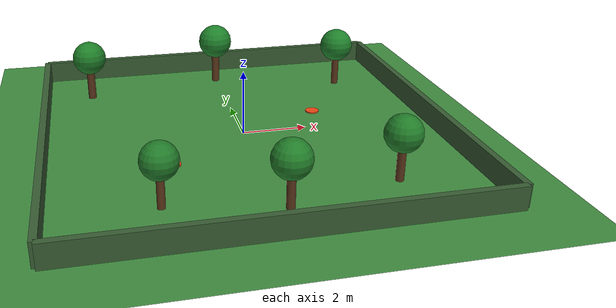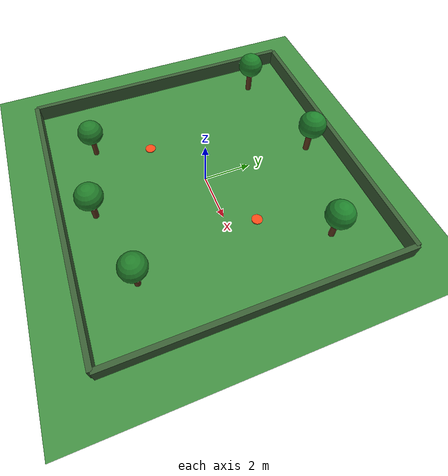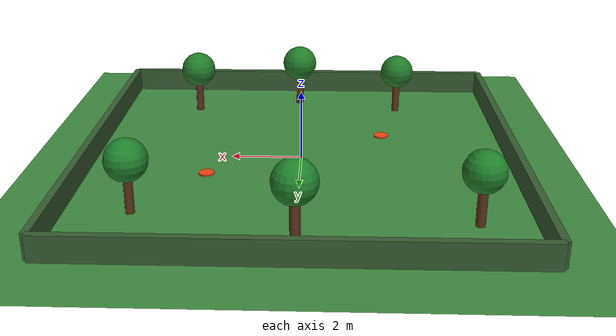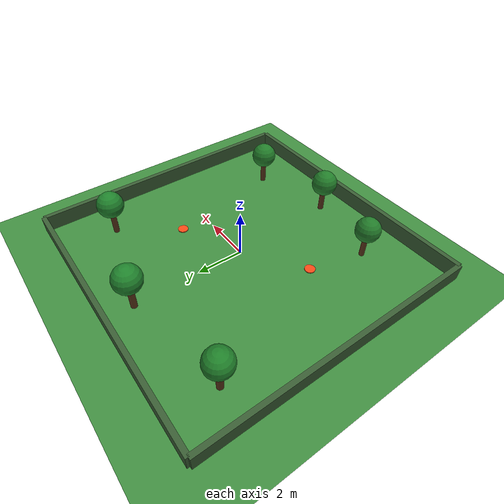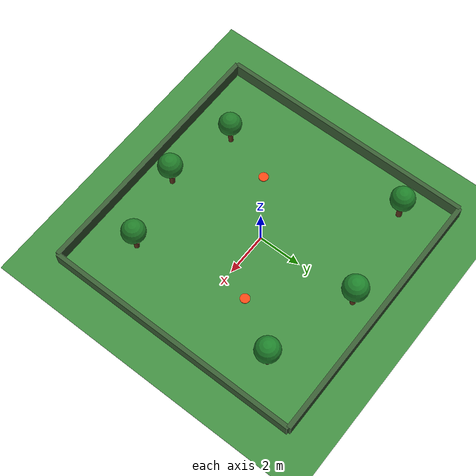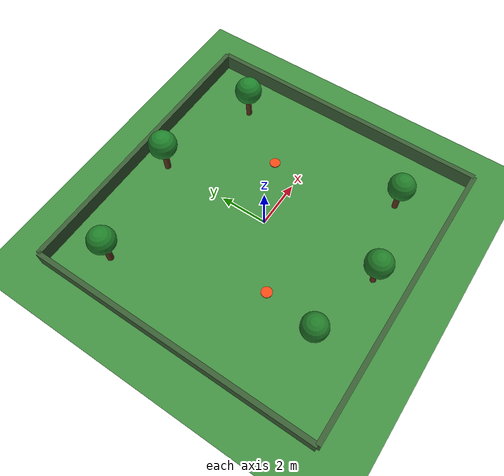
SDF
<?xml version="1.0" ?>
<sdf version="1.9">
  <world name="forest_arena">
    <plugin filename="gz-sim-physics-system" name="gz::sim::systems::Physics"/>
    <plugin filename="gz-sim-user-commands-system" name="gz::sim::systems::UserCommands"/>
    <plugin filename="gz-sim-scene-broadcaster-system" name="gz::sim::systems::SceneBroadcaster"/>

    <gravity>0 0 -9.81</gravity>
    <magnetic_field>6e-06 2.3e-05 -4.2e-05</magnetic_field>

    <scene>
      <ambient>0.58 0.68 0.58 1.0</ambient>
      <background>0.80 0.92 0.82 1.0</background>
      <shadows>true</shadows>
    </scene>

    <light name="sun" type="directional">
      <cast_shadows>true</cast_shadows>
      <pose>0 0 20 0 0 0</pose>
      <diffuse>0.95 0.95 0.90 1</diffuse>
      <specular>0.20 0.20 0.20 1</specular>
      <attenuation>
        <range>1000</range>
        <constant>0.9</constant>
        <linear>0.01</linear>
        <quadratic>0.001</quadratic>
      </attenuation>
      <direction>-0.35 0.15 -0.92</direction>
    </light>

    <model name="ground_plane">
      <static>true</static>
      <link name="link">
        <collision name="collision">
          <geometry>
            <plane>
              <normal>0 0 1</normal>
              <size>30 30</size>
            </plane>
          </geometry>
        </collision>
        <visual name="visual">
          <cast_shadows>false</cast_shadows>
          <geometry>
            <plane>
              <normal>0 0 1</normal>
              <size>30 30</size>
            </plane>
          </geometry>
          <material>
            <ambient>0.20 0.45 0.20 1.0</ambient>
            <diffuse>0.25 0.55 0.25 1.0</diffuse>
            <specular>0.02 0.02 0.02 1.0</specular>
          </material>
        </visual>
      </link>
    </model>

    <!-- Arena walls (12 m square) -->
    <model name="arena_walls">
      <static>true</static>
      <link name="walls_link">
        <collision name="north_collision">
          <pose>0 6 0.35 0 0 0</pose>
          <geometry><box><size>12 0.2 0.7</size></box></geometry>
        </collision>
        <collision name="south_collision">
          <pose>0 -6 0.35 0 0 0</pose>
          <geometry><box><size>12 0.2 0.7</size></box></geometry>
        </collision>
        <collision name="east_collision">
          <pose>6 0 0.35 0 0 0</pose>
          <geometry><box><size>0.2 12 0.7</size></box></geometry>
        </collision>
        <collision name="west_collision">
          <pose>-6 0 0.35 0 0 0</pose>
          <geometry><box><size>0.2 12 0.7</size></box></geometry>
        </collision>

        <visual name="north_visual">
          <pose>0 6 0.35 0 0 0</pose>
          <geometry><box><size>12 0.2 0.7</size></box></geometry>
          <material><ambient>0.19 0.30 0.17 1</ambient><diffuse>0.22 0.36 0.20 1</diffuse></material>
        </visual>
        <visual name="south_visual">
          <pose>0 -6 0.35 0 0 0</pose>
          <geometry><box><size>12 0.2 0.7</size></box></geometry>
          <material><ambient>0.19 0.30 0.17 1</ambient><diffuse>0.22 0.36 0.20 1</diffuse></material>
        </visual>
        <visual name="east_visual">
          <pose>6 0 0.35 0 0 0</pose>
          <geometry><box><size>0.2 12 0.7</size></box></geometry>
          <material><ambient>0.19 0.30 0.17 1</ambient><diffuse>0.22 0.36 0.20 1</diffuse></material>
        </visual>
        <visual name="west_visual">
          <pose>-6 0 0.35 0 0 0</pose>
          <geometry><box><size>0.2 12 0.7</size></box></geometry>
          <material><ambient>0.19 0.30 0.17 1</ambient><diffuse>0.22 0.36 0.20 1</diffuse></material>
        </visual>
      </link>
    </model>

    <!-- Decorative tree macro instances (simple trunk + canopy) -->
    <model name="tree_01">
      <static>true</static>
      <pose>-4.5 4.0 0 0 0 0</pose>
      <link name="link">
        <visual name="trunk"><pose>0 0 0.6 0 0 0</pose><geometry><cylinder><radius>0.13</radius><length>1.2</length></cylinder></geometry><material><ambient>0.28 0.16 0.07 1</ambient><diffuse>0.35 0.20 0.10 1</diffuse></material></visual>
        <collision name="trunk_col"><pose>0 0 0.6 0 0 0</pose><geometry><cylinder><radius>0.13</radius><length>1.2</length></cylinder></geometry></collision>
        <visual name="canopy"><pose>0 0 1.45 0 0 0</pose><geometry><sphere><radius>0.55</radius></sphere></geometry><material><ambient>0.08 0.35 0.12 1</ambient><diffuse>0.12 0.50 0.16 1</diffuse></material></visual>
      </link>
    </model>

    <model name="tree_02"><static>true</static><pose>-3.0 -4.0 0 0 0 0</pose><link name="link"><visual name="trunk"><pose>0 0 0.55 0 0 0</pose><geometry><cylinder><radius>0.11</radius><length>1.1</length></cylinder></geometry><material><ambient>0.30 0.18 0.08 1</ambient><diffuse>0.36 0.21 0.10 1</diffuse></material></visual><collision name="trunk_col"><pose>0 0 0.55 0 0 0</pose><geometry><cylinder><radius>0.11</radius><length>1.1</length></cylinder></geometry></collision><visual name="canopy"><pose>0 0 1.35 0 0 0</pose><geometry><sphere><radius>0.52</radius></sphere></geometry><material><ambient>0.09 0.34 0.11 1</ambient><diffuse>0.13 0.48 0.16 1</diffuse></material></visual></link></model>
    <model name="tree_03"><static>true</static><pose>4.2 3.6 0 0 0 0</pose><link name="link"><visual name="trunk"><pose>0 0 0.6 0 0 0</pose><geometry><cylinder><radius>0.12</radius><length>1.2</length></cylinder></geometry><material><ambient>0.28 0.16 0.07 1</ambient><diffuse>0.35 0.20 0.10 1</diffuse></material></visual><collision name="trunk_col"><pose>0 0 0.6 0 0 0</pose><geometry><cylinder><radius>0.12</radius><length>1.2</length></cylinder></geometry></collision><visual name="canopy"><pose>0 0 1.45 0 0 0</pose><geometry><sphere><radius>0.56</radius></sphere></geometry><material><ambient>0.08 0.35 0.12 1</ambient><diffuse>0.12 0.51 0.17 1</diffuse></material></visual></link></model>
    <model name="tree_04"><static>true</static><pose>3.5 -3.9 0 0 0 0</pose><link name="link"><visual name="trunk"><pose>0 0 0.58 0 0 0</pose><geometry><cylinder><radius>0.12</radius><length>1.16</length></cylinder></geometry><material><ambient>0.29 0.17 0.08 1</ambient><diffuse>0.35 0.20 0.10 1</diffuse></material></visual><collision name="trunk_col"><pose>0 0 0.58 0 0 0</pose><geometry><cylinder><radius>0.12</radius><length>1.16</length></cylinder></geometry></collision><visual name="canopy"><pose>0 0 1.4 0 0 0</pose><geometry><sphere><radius>0.54</radius></sphere></geometry><material><ambient>0.09 0.34 0.11 1</ambient><diffuse>0.13 0.49 0.16 1</diffuse></material></visual></link></model>
    <model name="tree_05"><static>true</static><pose>0.0 4.8 0 0 0 0</pose><link name="link"><visual name="trunk"><pose>0 0 0.62 0 0 0</pose><geometry><cylinder><radius>0.13</radius><length>1.24</length></cylinder></geometry><material><ambient>0.30 0.17 0.08 1</ambient><diffuse>0.36 0.21 0.10 1</diffuse></material></visual><collision name="trunk_col"><pose>0 0 0.62 0 0 0</pose><geometry><cylinder><radius>0.13</radius><length>1.24</length></cylinder></geometry></collision><visual name="canopy"><pose>0 0 1.50 0 0 0</pose><geometry><sphere><radius>0.58</radius></sphere></geometry><material><ambient>0.08 0.35 0.12 1</ambient><diffuse>0.12 0.51 0.17 1</diffuse></material></visual></link></model>
    <model name="tree_06"><static>true</static><pose>0.2 -4.7 0 0 0 0</pose><link name="link"><visual name="trunk"><pose>0 0 0.58 0 0 0</pose><geometry><cylinder><radius>0.12</radius><length>1.16</length></cylinder></geometry><material><ambient>0.29 0.17 0.08 1</ambient><diffuse>0.35 0.20 0.10 1</diffuse></material></visual><collision name="trunk_col"><pose>0 0 0.58 0 0 0</pose><geometry><cylinder><radius>0.12</radius><length>1.16</length></cylinder></geometry></collision><visual name="canopy"><pose>0 0 1.40 0 0 0</pose><geometry><sphere><radius>0.55</radius></sphere></geometry><material><ambient>0.09 0.34 0.11 1</ambient><diffuse>0.13 0.49 0.16 1</diffuse></material></visual></link></model>

    <!-- Fire marker locations (visual goal cues) -->
    <model name="fire_zone_alpha">
      <static>true</static>
      <pose>2.6 1.2 0.02 0 0 0</pose>
      <link name="link">
        <visual name="fire_marker">
          <geometry><cylinder><radius>0.22</radius><length>0.04</length></cylinder></geometry>
          <material><ambient>0.85 0.20 0.05 1</ambient><diffuse>0.95 0.28 0.08 1</diffuse><emissive>0.25 0.05 0.00 1</emissive></material>
        </visual>
      </link>
    </model>

    <model name="fire_zone_bravo">
      <static>true</static>
      <pose>-2.4 -1.7 0.02 0 0 0</pose>
      <link name="link">
        <visual name="fire_marker">
          <geometry><cylinder><radius>0.22</radius><length>0.04</length></cylinder></geometry>
          <material><ambient>0.85 0.20 0.05 1</ambient><diffuse>0.95 0.28 0.08 1</diffuse><emissive>0.25 0.05 0.00 1</emissive></material>
        </visual>
      </link>
    </model>

  </world>
</sdf>
